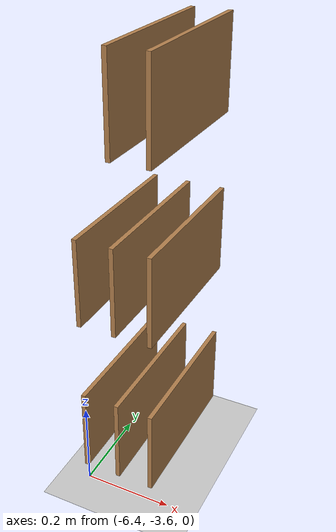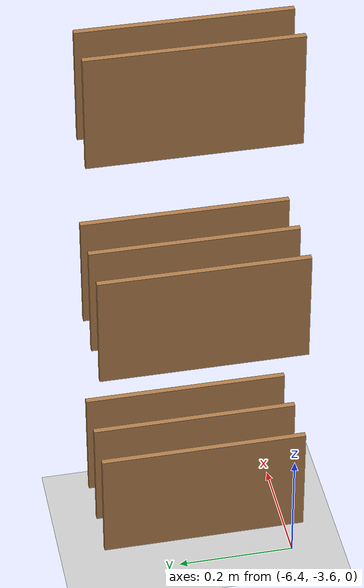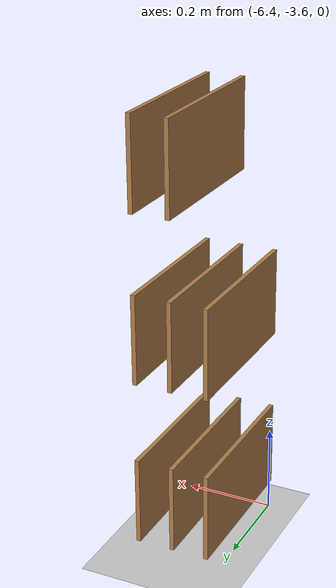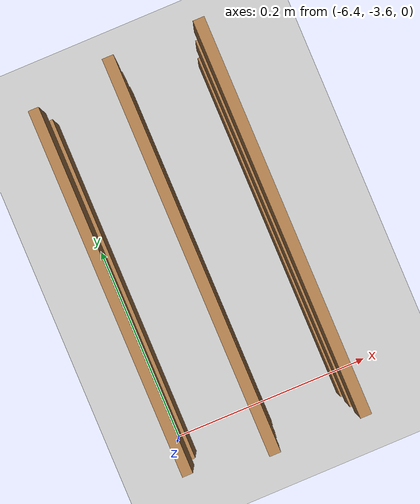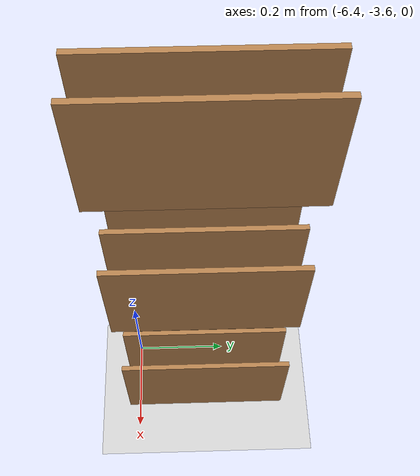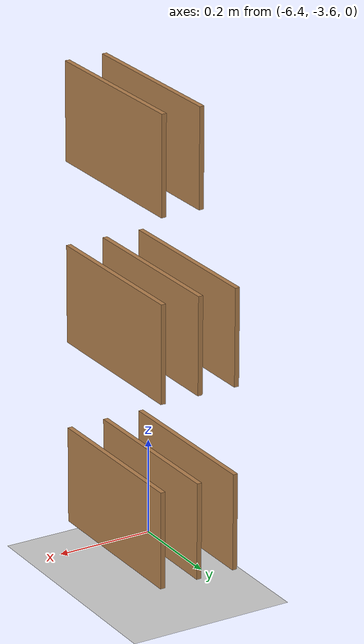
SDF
<sdf version="1.7">
 <world name="default">
  <model name="ground_plane">
   <static>1</static>
   <link name="link">
    <collision name="collision">
     <geometry><plane><normal>0 0 1</normal><size>100 100</size></plane></geometry>
     <surface><friction><ode><mu>1</mu><mu2>1</mu2></ode></friction></surface>
    </collision>
    <visual name="visual">
     <cast_shadows>0</cast_shadows>
     <geometry><plane><normal>0 0 1</normal><size>100 100</size></plane></geometry>
     <material>
      <script><uri>file://media/materials/scripts/gazebo.material</uri><name>Gazebo/Grey</name></script>
     </material>
    </visual>
    <velocity_decay><linear>0</linear><angular>0</angular></velocity_decay>
   </link>
  </model>
  <model name="bookshelf_0">
   <link name="link_10">
    <inertial>
     <mass>1</mass>
     <inertia>
      <ixx>0.166667</ixx>
      <ixy>0</ixy>
      <ixz>0</ixz>
      <iyy>0.166667</iyy>
      <iyz>0</iyz>
      <izz>0.166667</izz>
     </inertia>
    </inertial>
    <pose>0.34 -0.195 0.907998 0 0 -1.57</pose>
    <visual name="ModelPreview_3::link_1::visual_1">
     <geometry><box><size>0.35 0.01 0.2</size></box></geometry>
     <material>
      <script><uri>file://media/materials/scripts/gazebo.material</uri><name>Gazebo/Wood</name></script>
      <shader type="pixel"/>
     </material>
    </visual>
    <visual name="visual">
     <geometry><box><size>0.35 0.01 0.2</size></box></geometry>
     <material>
      <lighting>1</lighting>
      <script><uri>file://media/materials/scripts/gazebo.material</uri><name>Gazebo/Grey</name></script>
      <shader type="pixel"><normal_map>__default__</normal_map></shader>
      <ambient>0.3 0.3 0.3 1</ambient>
      <diffuse>0.7 0.7 0.7 1</diffuse>
      <specular>0.01 0.01 0.01 1</specular>
      <emissive>0 0 0 1</emissive>
     </material>
    </visual>
    <collision name="collision">
     <geometry><box><size>0.35 0.01 0.2</size></box></geometry>
     <surface>
      <friction>
       <ode><mu>1</mu><mu2>1</mu2><fdir1>0 0 0</fdir1><slip1>0</slip1><slip2>0</slip2></ode>
       <torsional>
        <coefficient>1</coefficient>
        <patch_radius>0</patch_radius>
        <surface_radius>0</surface_radius>
        <use_patch_radius>1</use_patch_radius>
        <ode><slip>0</slip></ode>
       </torsional>
      </friction>
      <bounce><restitution_coefficient>0</restitution_coefficient><threshold>1e+06</threshold></bounce>
      <contact>
       <collide_without_contact>0</collide_without_contact>
       <collide_without_contact_bitmask>1</collide_without_contact_bitmask>
       <collide_bitmask>1</collide_bitmask>
       <ode>
        <soft_cfm>0</soft_cfm>
        <soft_erp>0.2</soft_erp>
        <kp>1e+13</kp>
        <kd>1</kd>
        <max_vel>0.01</max_vel>
        <min_depth>0</min_depth>
       </ode>
       <bullet>
        <split_impulse>1</split_impulse>
        <split_impulse_penetration_threshold>-0.01</split_impulse_penetration_threshold>
        <soft_cfm>0</soft_cfm>
        <soft_erp>0.2</soft_erp>
        <kp>1e+13</kp>
        <kd>1</kd>
       </bullet>
      </contact>
     </surface>
    </collision>
   </link>
   <link name="link_11">
    <inertial>
     <mass>1</mass>
     <inertia>
      <ixx>0.166667</ixx>
      <ixy>0</ixy>
      <ixz>0</ixz>
      <iyy>0.166667</iyy>
      <iyz>0</iyz>
      <izz>0.166667</izz>
     </inertia>
    </inertial>
    <pose>0.42 -0.195 0.907998 0 0 -1.57</pose>
    <visual name="ModelPreview_3::link_1::visual_1">
     <geometry><box><size>0.35 0.01 0.2</size></box></geometry>
     <material>
      <script><uri>file://media/materials/scripts/gazebo.material</uri><name>Gazebo/Wood</name></script>
      <shader type="pixel"/>
     </material>
    </visual>
    <visual name="visual">
     <geometry><box><size>0.35 0.01 0.2</size></box></geometry>
     <material>
      <lighting>1</lighting>
      <script><uri>file://media/materials/scripts/gazebo.material</uri><name>Gazebo/Grey</name></script>
      <shader type="pixel"><normal_map>__default__</normal_map></shader>
      <ambient>0.3 0.3 0.3 1</ambient>
      <diffuse>0.7 0.7 0.7 1</diffuse>
      <specular>0.01 0.01 0.01 1</specular>
      <emissive>0 0 0 1</emissive>
     </material>
    </visual>
    <collision name="collision">
     <geometry><box><size>0.35 0.01 0.2</size></box></geometry>
     <surface>
      <friction>
       <ode><mu>1</mu><mu2>1</mu2><fdir1>0 0 0</fdir1><slip1>0</slip1><slip2>0</slip2></ode>
       <torsional>
        <coefficient>1</coefficient>
        <patch_radius>0</patch_radius>
        <surface_radius>0</surface_radius>
        <use_patch_radius>1</use_patch_radius>
        <ode><slip>0</slip></ode>
       </torsional>
      </friction>
      <bounce><restitution_coefficient>0</restitution_coefficient><threshold>1e+06</threshold></bounce>
      <contact>
       <collide_without_contact>0</collide_without_contact>
       <collide_without_contact_bitmask>1</collide_without_contact_bitmask>
       <collide_bitmask>1</collide_bitmask>
       <ode>
        <soft_cfm>0</soft_cfm>
        <soft_erp>0.2</soft_erp>
        <kp>1e+13</kp>
        <kd>1</kd>
        <max_vel>0.01</max_vel>
        <min_depth>0</min_depth>
       </ode>
       <bullet>
        <split_impulse>1</split_impulse>
        <split_impulse_penetration_threshold>-0.01</split_impulse_penetration_threshold>
        <soft_cfm>0</soft_cfm>
        <soft_erp>0.2</soft_erp>
        <kp>1e+13</kp>
        <kd>1</kd>
       </bullet>
      </contact>
     </surface>
    </collision>
   </link>
   <link name="link_2_9">
    <inertial>
     <mass>1</mass>
     <inertia>
      <ixx>0.166667</ixx>
      <ixy>0</ixy>
      <ixz>0</ixz>
      <iyy>0.166667</iyy>
      <iyz>0</iyz>
      <izz>0.166667</izz>
     </inertia>
    </inertial>
    <pose>0.26 -0.195 0.5379 0 0 -1.57</pose>
    <visual name="ModelPreview_3::link_1::visual_1">
     <geometry><box><size>0.35 0.01 0.2</size></box></geometry>
     <material>
      <script><uri>file://media/materials/scripts/gazebo.material</uri><name>Gazebo/Wood</name></script>
      <shader type="pixel"/>
     </material>
    </visual>
    <visual name="visual">
     <geometry><box><size>0.35 0.01 0.2</size></box></geometry>
     <material>
      <lighting>1</lighting>
      <script><uri>file://media/materials/scripts/gazebo.material</uri><name>Gazebo/Grey</name></script>
      <shader type="pixel"><normal_map>__default__</normal_map></shader>
      <ambient>0.3 0.3 0.3 1</ambient>
      <diffuse>0.7 0.7 0.7 1</diffuse>
      <specular>0.01 0.01 0.01 1</specular>
      <emissive>0 0 0 1</emissive>
     </material>
    </visual>
    <collision name="collision">
     <geometry><box><size>0.35 0.01 0.2</size></box></geometry>
     <surface>
      <friction>
       <ode><mu>1</mu><mu2>1</mu2><fdir1>0 0 0</fdir1><slip1>0</slip1><slip2>0</slip2></ode>
       <torsional>
        <coefficient>1</coefficient>
        <patch_radius>0</patch_radius>
        <surface_radius>0</surface_radius>
        <use_patch_radius>1</use_patch_radius>
        <ode><slip>0</slip></ode>
       </torsional>
      </friction>
      <bounce><restitution_coefficient>0</restitution_coefficient><threshold>1e+06</threshold></bounce>
      <contact>
       <collide_without_contact>0</collide_without_contact>
       <collide_without_contact_bitmask>1</collide_without_contact_bitmask>
       <collide_bitmask>1</collide_bitmask>
       <ode>
        <soft_cfm>0</soft_cfm>
        <soft_erp>0.2</soft_erp>
        <kp>1e+13</kp>
        <kd>1</kd>
        <max_vel>0.01</max_vel>
        <min_depth>0</min_depth>
       </ode>
       <bullet>
        <split_impulse>1</split_impulse>
        <split_impulse_penetration_threshold>-0.01</split_impulse_penetration_threshold>
        <soft_cfm>0</soft_cfm>
        <soft_erp>0.2</soft_erp>
        <kp>1e+13</kp>
        <kd>1</kd>
       </bullet>
      </contact>
     </surface>
    </collision>
   </link>
   <link name="link_2_10">
    <inertial>
     <mass>1</mass>
     <inertia>
      <ixx>0.166667</ixx>
      <ixy>0</ixy>
      <ixz>0</ixz>
      <iyy>0.166667</iyy>
      <iyz>0</iyz>
      <izz>0.166667</izz>
     </inertia>
    </inertial>
    <pose>0.34 -0.195 0.5379 0 0 -1.57</pose>
    <visual name="ModelPreview_3::link_1::visual_1">
     <geometry><box><size>0.35 0.01 0.2</size></box></geometry>
     <material>
      <script><uri>file://media/materials/scripts/gazebo.material</uri><name>Gazebo/Wood</name></script>
      <shader type="pixel"/>
     </material>
    </visual>
    <visual name="visual">
     <geometry><box><size>0.35 0.01 0.2</size></box></geometry>
     <material>
      <lighting>1</lighting>
      <script><uri>file://media/materials/scripts/gazebo.material</uri><name>Gazebo/Grey</name></script>
      <shader type="pixel"><normal_map>__default__</normal_map></shader>
      <ambient>0.3 0.3 0.3 1</ambient>
      <diffuse>0.7 0.7 0.7 1</diffuse>
      <specular>0.01 0.01 0.01 1</specular>
      <emissive>0 0 0 1</emissive>
     </material>
    </visual>
    <collision name="collision">
     <geometry><box><size>0.35 0.01 0.2</size></box></geometry>
     <surface>
      <friction>
       <ode><mu>1</mu><mu2>1</mu2><fdir1>0 0 0</fdir1><slip1>0</slip1><slip2>0</slip2></ode>
       <torsional>
        <coefficient>1</coefficient>
        <patch_radius>0</patch_radius>
        <surface_radius>0</surface_radius>
        <use_patch_radius>1</use_patch_radius>
        <ode><slip>0</slip></ode>
       </torsional>
      </friction>
      <bounce><restitution_coefficient>0</restitution_coefficient><threshold>1e+06</threshold></bounce>
      <contact>
       <collide_without_contact>0</collide_without_contact>
       <collide_without_contact_bitmask>1</collide_without_contact_bitmask>
       <collide_bitmask>1</collide_bitmask>
       <ode>
        <soft_cfm>0</soft_cfm>
        <soft_erp>0.2</soft_erp>
        <kp>1e+13</kp>
        <kd>1</kd>
        <max_vel>0.01</max_vel>
        <min_depth>0</min_depth>
       </ode>
       <bullet>
        <split_impulse>1</split_impulse>
        <split_impulse_penetration_threshold>-0.01</split_impulse_penetration_threshold>
        <soft_cfm>0</soft_cfm>
        <soft_erp>0.2</soft_erp>
        <kp>1e+13</kp>
        <kd>1</kd>
       </bullet>
      </contact>
     </surface>
    </collision>
   </link>
   <link name="link_2_11">
    <inertial>
     <mass>1</mass>
     <inertia>
      <ixx>0.166667</ixx>
      <ixy>0</ixy>
      <ixz>0</ixz>
      <iyy>0.166667</iyy>
      <iyz>0</iyz>
      <izz>0.166667</izz>
     </inertia>
    </inertial>
    <pose>0.42 -0.195 0.5379 0 0 -1.57</pose>
    <visual name="ModelPreview_3::link_1::visual_1">
     <geometry><box><size>0.35 0.01 0.2</size></box></geometry>
     <material>
      <script><uri>file://media/materials/scripts/gazebo.material</uri><name>Gazebo/Wood</name></script>
      <shader type="pixel"/>
     </material>
    </visual>
    <visual name="visual">
     <geometry><box><size>0.35 0.01 0.2</size></box></geometry>
     <material>
      <lighting>1</lighting>
      <script><uri>file://media/materials/scripts/gazebo.material</uri><name>Gazebo/Grey</name></script>
      <shader type="pixel"><normal_map>__default__</normal_map></shader>
      <ambient>0.3 0.3 0.3 1</ambient>
      <diffuse>0.7 0.7 0.7 1</diffuse>
      <specular>0.01 0.01 0.01 1</specular>
      <emissive>0 0 0 1</emissive>
     </material>
    </visual>
    <collision name="collision">
     <geometry><box><size>0.35 0.01 0.2</size></box></geometry>
     <surface>
      <friction>
       <ode><mu>1</mu><mu2>1</mu2><fdir1>0 0 0</fdir1><slip1>0</slip1><slip2>0</slip2></ode>
       <torsional>
        <coefficient>1</coefficient>
        <patch_radius>0</patch_radius>
        <surface_radius>0</surface_radius>
        <use_patch_radius>1</use_patch_radius>
        <ode><slip>0</slip></ode>
       </torsional>
      </friction>
      <bounce><restitution_coefficient>0</restitution_coefficient><threshold>1e+06</threshold></bounce>
      <contact>
       <collide_without_contact>0</collide_without_contact>
       <collide_without_contact_bitmask>1</collide_without_contact_bitmask>
       <collide_bitmask>1</collide_bitmask>
       <ode>
        <soft_cfm>0</soft_cfm>
        <soft_erp>0.2</soft_erp>
        <kp>1e+13</kp>
        <kd>1</kd>
        <max_vel>0.01</max_vel>
        <min_depth>0</min_depth>
       </ode>
       <bullet>
        <split_impulse>1</split_impulse>
        <split_impulse_penetration_threshold>-0.01</split_impulse_penetration_threshold>
        <soft_cfm>0</soft_cfm>
        <soft_erp>0.2</soft_erp>
        <kp>1e+13</kp>
        <kd>1</kd>
       </bullet>
      </contact>
     </surface>
    </collision>
   </link>
   <link name="link_2_12">
    <inertial>
     <mass>1</mass>
     <inertia>
      <ixx>0.166667</ixx>
      <ixy>0</ixy>
      <ixz>0</ixz>
      <iyy>0.166667</iyy>
      <iyz>0</iyz>
      <izz>0.166667</izz>
     </inertia>
    </inertial>
    <pose>0.26 -0.195 0.5379 0 0 -1.57</pose>
    <visual name="ModelPreview_3::link_1::visual_1">
     <geometry><box><size>0.35 0.01 0.2</size></box></geometry>
     <material>
      <script><uri>file://media/materials/scripts/gazebo.material</uri><name>Gazebo/Wood</name></script>
      <shader type="pixel"/>
     </material>
    </visual>
    <visual name="visual">
     <geometry><box><size>0.35 0.01 0.2</size></box></geometry>
     <material>
      <lighting>1</lighting>
      <script><uri>file://media/materials/scripts/gazebo.material</uri><name>Gazebo/Grey</name></script>
      <shader type="pixel"><normal_map>__default__</normal_map></shader>
      <ambient>0.3 0.3 0.3 1</ambient>
      <diffuse>0.7 0.7 0.7 1</diffuse>
      <specular>0.01 0.01 0.01 1</specular>
      <emissive>0 0 0 1</emissive>
     </material>
    </visual>
    <collision name="collision">
     <geometry><box><size>0.35 0.01 0.2</size></box></geometry>
     <surface>
      <friction>
       <ode><mu>1</mu><mu2>1</mu2><fdir1>0 0 0</fdir1><slip1>0</slip1><slip2>0</slip2></ode>
       <torsional>
        <coefficient>1</coefficient>
        <patch_radius>0</patch_radius>
        <surface_radius>0</surface_radius>
        <use_patch_radius>1</use_patch_radius>
        <ode><slip>0</slip></ode>
       </torsional>
      </friction>
      <bounce><restitution_coefficient>0</restitution_coefficient><threshold>1e+06</threshold></bounce>
      <contact>
       <collide_without_contact>0</collide_without_contact>
       <collide_without_contact_bitmask>1</collide_without_contact_bitmask>
       <collide_bitmask>1</collide_bitmask>
       <ode>
        <soft_cfm>0</soft_cfm>
        <soft_erp>0.2</soft_erp>
        <kp>1e+13</kp>
        <kd>1</kd>
        <max_vel>0.01</max_vel>
        <min_depth>0</min_depth>
       </ode>
       <bullet>
        <split_impulse>1</split_impulse>
        <split_impulse_penetration_threshold>-0.01</split_impulse_penetration_threshold>
        <soft_cfm>0</soft_cfm>
        <soft_erp>0.2</soft_erp>
        <kp>1e+13</kp>
        <kd>1</kd>
       </bullet>
      </contact>
     </surface>
    </collision>
   </link>
   <link name="link_3_9">
    <inertial>
     <mass>1</mass>
     <inertia>
      <ixx>0.166667</ixx>
      <ixy>0</ixy>
      <ixz>0</ixz>
      <iyy>0.166667</iyy>
      <iyz>0</iyz>
      <izz>0.166667</izz>
     </inertia>
    </inertial>
    <pose>0.26 -0.195 0.158 0 0 -1.57</pose>
    <visual name="ModelPreview_3::link_1::visual_1">
     <geometry><box><size>0.35 0.01 0.2</size></box></geometry>
     <material>
      <script><uri>file://media/materials/scripts/gazebo.material</uri><name>Gazebo/Wood</name></script>
      <shader type="pixel"/>
     </material>
    </visual>
    <visual name="visual">
     <geometry><box><size>0.35 0.01 0.2</size></box></geometry>
     <material>
      <lighting>1</lighting>
      <script><uri>file://media/materials/scripts/gazebo.material</uri><name>Gazebo/Grey</name></script>
      <shader type="pixel"><normal_map>__default__</normal_map></shader>
      <ambient>0.3 0.3 0.3 1</ambient>
      <diffuse>0.7 0.7 0.7 1</diffuse>
      <specular>0.01 0.01 0.01 1</specular>
      <emissive>0 0 0 1</emissive>
     </material>
    </visual>
    <collision name="collision">
     <geometry><box><size>0.35 0.01 0.2</size></box></geometry>
     <surface>
      <friction>
       <ode><mu>1</mu><mu2>1</mu2><fdir1>0 0 0</fdir1><slip1>0</slip1><slip2>0</slip2></ode>
       <torsional>
        <coefficient>1</coefficient>
        <patch_radius>0</patch_radius>
        <surface_radius>0</surface_radius>
        <use_patch_radius>1</use_patch_radius>
        <ode><slip>0</slip></ode>
       </torsional>
      </friction>
      <bounce><restitution_coefficient>0</restitution_coefficient><threshold>1e+06</threshold></bounce>
      <contact>
       <collide_without_contact>0</collide_without_contact>
       <collide_without_contact_bitmask>1</collide_without_contact_bitmask>
       <collide_bitmask>1</collide_bitmask>
       <ode>
        <soft_cfm>0</soft_cfm>
        <soft_erp>0.2</soft_erp>
        <kp>1e+13</kp>
        <kd>1</kd>
        <max_vel>0.01</max_vel>
        <min_depth>0</min_depth>
       </ode>
       <bullet>
        <split_impulse>1</split_impulse>
        <split_impulse_penetration_threshold>-0.01</split_impulse_penetration_threshold>
        <soft_cfm>0</soft_cfm>
        <soft_erp>0.2</soft_erp>
        <kp>1e+13</kp>
        <kd>1</kd>
       </bullet>
      </contact>
     </surface>
    </collision>
   </link>
   <link name="link_3_10">
    <inertial>
     <mass>1</mass>
     <inertia>
      <ixx>0.166667</ixx>
      <ixy>0</ixy>
      <ixz>0</ixz>
      <iyy>0.166667</iyy>
      <iyz>0</iyz>
      <izz>0.166667</izz>
     </inertia>
    </inertial>
    <pose>0.34 -0.195 0.158 0 0 -1.57</pose>
    <visual name="ModelPreview_3::link_1::visual_1">
     <geometry><box><size>0.35 0.01 0.2</size></box></geometry>
     <material>
      <script><uri>file://media/materials/scripts/gazebo.material</uri><name>Gazebo/Wood</name></script>
      <shader type="pixel"/>
     </material>
    </visual>
    <visual name="visual">
     <geometry><box><size>0.35 0.01 0.2</size></box></geometry>
     <material>
      <lighting>1</lighting>
      <script><uri>file://media/materials/scripts/gazebo.material</uri><name>Gazebo/Grey</name></script>
      <shader type="pixel"><normal_map>__default__</normal_map></shader>
      <ambient>0.3 0.3 0.3 1</ambient>
      <diffuse>0.7 0.7 0.7 1</diffuse>
      <specular>0.01 0.01 0.01 1</specular>
      <emissive>0 0 0 1</emissive>
     </material>
    </visual>
    <collision name="collision">
     <geometry><box><size>0.35 0.01 0.2</size></box></geometry>
     <surface>
      <friction>
       <ode><mu>1</mu><mu2>1</mu2><fdir1>0 0 0</fdir1><slip1>0</slip1><slip2>0</slip2></ode>
       <torsional>
        <coefficient>1</coefficient>
        <patch_radius>0</patch_radius>
        <surface_radius>0</surface_radius>
        <use_patch_radius>1</use_patch_radius>
        <ode><slip>0</slip></ode>
       </torsional>
      </friction>
      <bounce><restitution_coefficient>0</restitution_coefficient><threshold>1e+06</threshold></bounce>
      <contact>
       <collide_without_contact>0</collide_without_contact>
       <collide_without_contact_bitmask>1</collide_without_contact_bitmask>
       <collide_bitmask>1</collide_bitmask>
       <ode>
        <soft_cfm>0</soft_cfm>
        <soft_erp>0.2</soft_erp>
        <kp>1e+13</kp>
        <kd>1</kd>
        <max_vel>0.01</max_vel>
        <min_depth>0</min_depth>
       </ode>
       <bullet>
        <split_impulse>1</split_impulse>
        <split_impulse_penetration_threshold>-0.01</split_impulse_penetration_threshold>
        <soft_cfm>0</soft_cfm>
        <soft_erp>0.2</soft_erp>
        <kp>1e+13</kp>
        <kd>1</kd>
       </bullet>
      </contact>
     </surface>
    </collision>
   </link>
   <link name="link_3_11">
    <inertial>
     <mass>1</mass>
     <inertia>
      <ixx>0.166667</ixx>
      <ixy>0</ixy>
      <ixz>0</ixz>
      <iyy>0.166667</iyy>
      <iyz>0</iyz>
      <izz>0.166667</izz>
     </inertia>
    </inertial>
    <pose>0.42 -0.195 0.158 0 0 -1.57</pose>
    <visual name="ModelPreview_3::link_1::visual_1">
     <geometry><box><size>0.35 0.01 0.2</size></box></geometry>
     <material>
      <script><uri>file://media/materials/scripts/gazebo.material</uri><name>Gazebo/Wood</name></script>
      <shader type="pixel"/>
     </material>
    </visual>
    <visual name="visual">
     <geometry><box><size>0.35 0.01 0.2</size></box></geometry>
     <material>
      <lighting>1</lighting>
      <script><uri>file://media/materials/scripts/gazebo.material</uri><name>Gazebo/Grey</name></script>
      <shader type="pixel"><normal_map>__default__</normal_map></shader>
      <ambient>0.3 0.3 0.3 1</ambient>
      <diffuse>0.7 0.7 0.7 1</diffuse>
      <specular>0.01 0.01 0.01 1</specular>
      <emissive>0 0 0 1</emissive>
     </material>
    </visual>
    <collision name="collision">
     <geometry><box><size>0.35 0.01 0.2</size></box></geometry>
     <surface>
      <friction>
       <ode><mu>1</mu><mu2>1</mu2><fdir1>0 0 0</fdir1><slip1>0</slip1><slip2>0</slip2></ode>
       <torsional>
        <coefficient>1</coefficient>
        <patch_radius>0</patch_radius>
        <surface_radius>0</surface_radius>
        <use_patch_radius>1</use_patch_radius>
        <ode><slip>0</slip></ode>
       </torsional>
      </friction>
      <bounce><restitution_coefficient>0</restitution_coefficient><threshold>1e+06</threshold></bounce>
      <contact>
       <collide_without_contact>0</collide_without_contact>
       <collide_without_contact_bitmask>1</collide_without_contact_bitmask>
       <collide_bitmask>1</collide_bitmask>
       <ode>
        <soft_cfm>0</soft_cfm>
        <soft_erp>0.2</soft_erp>
        <kp>1e+13</kp>
        <kd>1</kd>
        <max_vel>0.01</max_vel>
        <min_depth>0</min_depth>
       </ode>
       <bullet>
        <split_impulse>1</split_impulse>
        <split_impulse_penetration_threshold>-0.01</split_impulse_penetration_threshold>
        <soft_cfm>0</soft_cfm>
        <soft_erp>0.2</soft_erp>
        <kp>1e+13</kp>
        <kd>1</kd>
       </bullet>
      </contact>
     </surface>
    </collision>
   </link>
   <link name="link_3_12">
    <inertial>
     <mass>1</mass>
     <inertia>
      <ixx>0.166667</ixx>
      <ixy>0</ixy>
      <ixz>0</ixz>
      <iyy>0.166667</iyy>
      <iyz>0</iyz>
      <izz>0.166667</izz>
     </inertia>
    </inertial>
    <pose>0.26 -0.195 0.158 0 0 -1.57</pose>
    <visual name="ModelPreview_3::link_1::visual_1">
     <geometry><box><size>0.35 0.01 0.2</size></box></geometry>
     <material>
      <script><uri>file://media/materials/scripts/gazebo.material</uri><name>Gazebo/Wood</name></script>
      <shader type="pixel"/>
     </material>
    </visual>
    <visual name="visual">
     <geometry><box><size>0.35 0.01 0.2</size></box></geometry>
     <material>
      <lighting>1</lighting>
      <script><uri>file://media/materials/scripts/gazebo.material</uri><name>Gazebo/Grey</name></script>
      <shader type="pixel"><normal_map>__default__</normal_map></shader>
      <ambient>0.3 0.3 0.3 1</ambient>
      <diffuse>0.7 0.7 0.7 1</diffuse>
      <specular>0.01 0.01 0.01 1</specular>
      <emissive>0 0 0 1</emissive>
     </material>
    </visual>
    <collision name="collision">
     <geometry><box><size>0.35 0.01 0.2</size></box></geometry>
     <surface>
      <friction>
       <ode><mu>1</mu><mu2>1</mu2><fdir1>0 0 0</fdir1><slip1>0</slip1><slip2>0</slip2></ode>
       <torsional>
        <coefficient>1</coefficient>
        <patch_radius>0</patch_radius>
        <surface_radius>0</surface_radius>
        <use_patch_radius>1</use_patch_radius>
        <ode><slip>0</slip></ode>
       </torsional>
      </friction>
      <bounce><restitution_coefficient>0</restitution_coefficient><threshold>1e+06</threshold></bounce>
      <contact>
       <collide_without_contact>0</collide_without_contact>
       <collide_without_contact_bitmask>1</collide_without_contact_bitmask>
       <collide_bitmask>1</collide_bitmask>
       <ode>
        <soft_cfm>0</soft_cfm>
        <soft_erp>0.2</soft_erp>
        <kp>1e+13</kp>
        <kd>1</kd>
        <max_vel>0.01</max_vel>
        <min_depth>0</min_depth>
       </ode>
       <bullet>
        <split_impulse>1</split_impulse>
        <split_impulse_penetration_threshold>-0.01</split_impulse_penetration_threshold>
        <soft_cfm>0</soft_cfm>
        <soft_erp>0.2</soft_erp>
        <kp>1e+13</kp>
        <kd>1</kd>
       </bullet>
      </contact>
     </surface>
    </collision>
   </link>
   <static>1</static>
   <pose>-6.65359 -3.24846 0 0 -0 0</pose>
  </model>
 </world>
</sdf>
